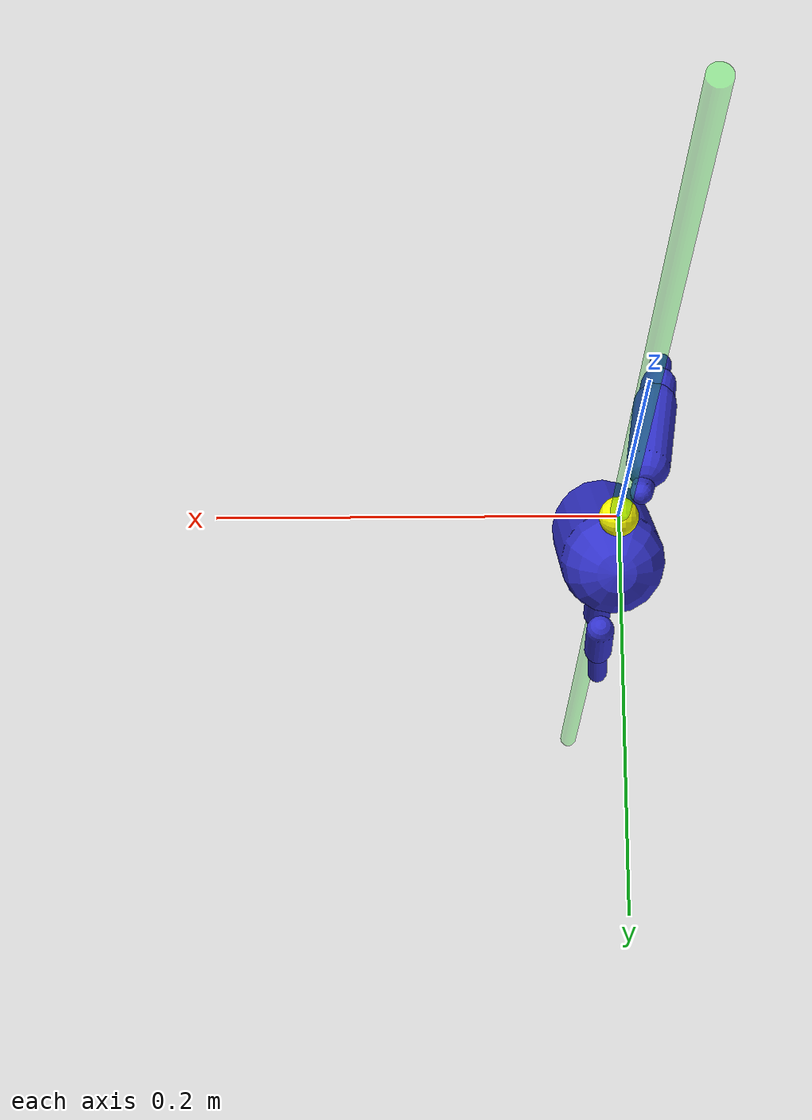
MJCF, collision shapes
<mujoco model="inspire left hand">
  <statistic center="0.3 0 0.4" extent="1"/>
  <compiler angle="radian" meshdir="./" autolimits="true"/>
  <visual>
    <headlight diffuse="0.6 0.6 0.6" ambient="0.3 0.3 0.3" specular="0 0 0"/>
    <rgba haze="0.15 0.25 0.35 1"/>
    <global azimuth="120" elevation="20"/>
  </visual>
  <default>
    <joint damping="1"/>
    <muscle ctrllimited="true" ctrlrange="0 100"/>
    <motor ctrllimited="true" ctrlrange="-3 3" gear="1"/>
    <position ctrllimited="true" kp="10"/>
  </default>
  <asset>
    <mesh name="l_palm_vis" file="meshes/inspire_hands/lh_base_link.STL"/>
    <mesh name="l_palm_col" file="meshes/inspire_hands/lh_base_link.STL"/>
    <mesh name="l_thumb_proximal_1_vis" file="meshes/inspire_hands/lh_Link11.STL"/>
    <mesh name="l_thumb_proximal_1_col" file="meshes/inspire_hands/lh_Link11.STL"/>
    <mesh name="l_thumb_proximal_2_vis" file="meshes/inspire_hands/lh_Link12.STL"/>
    <mesh name="l_thumb_proximal_2_col" file="meshes/inspire_hands/lh_Link12.STL"/>
    <mesh name="l_thumb_middle_vis" file="meshes/inspire_hands/lh_Link13.STL"/>
    <mesh name="l_thumb_middle_col" file="meshes/inspire_hands/lh_Link13.STL"/>
    <mesh name="l_thumb_distal_vis" file="meshes/inspire_hands/lh_Link14.STL"/>
    <mesh name="l_thumb_distal_col" file="meshes/inspire_hands/lh_Link14.STL"/>
    <mesh name="l_index_proximal_vis" file="meshes/inspire_hands/lh_Link15.STL"/>
    <mesh name="l_index_proximal_col" file="meshes/inspire_hands/lh_Link15.STL"/>
    <mesh name="l_index_distal_vis" file="meshes/inspire_hands/lh_Link16.STL"/>
    <mesh name="l_index_distal_col" file="meshes/inspire_hands/lh_Link16.STL"/>
    <mesh name="l_middle_proximal_vis" file="meshes/inspire_hands/lh_Link17.STL"/>
    <mesh name="l_middle_proximal_col" file="meshes/inspire_hands/lh_Link17.STL"/>
    <mesh name="l_middle_distal_vis" file="meshes/inspire_hands/lh_Link18.STL"/>
    <mesh name="l_middle_distal_col" file="meshes/inspire_hands/lh_Link18.STL"/>
    <mesh name="l_ring_proximal_vis" file="meshes/inspire_hands/lh_Link19.STL"/>
    <mesh name="l_ring_proximal_col" file="meshes/inspire_hands/lh_Link19.STL"/>
    <mesh name="l_ring_distal_vis" file="meshes/inspire_hands/lh_Link20.STL"/>
    <mesh name="l_ring_distal_col" file="meshes/inspire_hands/lh_Link20.STL"/>
    <mesh name="l_pinky_proximal_vis" file="meshes/inspire_hands/lh_Link21.STL"/>
    <mesh name="l_pinky_proximal_col" file="meshes/inspire_hands/lh_Link21.STL"/>
    <mesh name="l_pinky_distal_vis" file="meshes/inspire_hands/lh_Link22.STL"/>
    <mesh name="l_pinky_distal_col" file="meshes/inspire_hands/lh_Link22.STL"/>
    <material name="site_left_hand" rgba="0.1882 0.1882 0.1882 0"/>
    <material name="l_base_material" rgba="0 0 0 1"/>
    <material name="l_thumb_material" rgba="0 0 0 1"/>
    <material name="l_index_material" rgba="0 0 0 1"/>
    <material name="l_middle_material" rgba="0 0 0 1"/>
    <material name="l_ring_material" rgba="0 0 0 1"/>
    <material name="l_pinky_material" rgba="0 0 0 1"/>
    <material name="l_thumb_distal_material" rgba="0 0 0 1"/>
  </asset>
  <worldbody>
    <body name="left_hand" pos="0 0 0" quat="0.7071068 0.7071068 0 0">
      <site name="ft_frame" pos="0 0 0" size="0.01 0.01 0.01" rgba="1 0 0 0" type="sphere" group="1"/>
      <inertial diaginertia="0 0 0" mass="0" pos="0 0 0"/>
      <body name="eef" pos="0 0 0" quat="0.707 0. -0.707 0.">
        <site name="grip_site" pos="0 0 0" size="0.01 0.01 0.01" rgba="1 1 0 1" type="sphere" group="2"/>
        <site name="ee_x" pos="0.1 0 0" size="0.005 .1" quat="0.707105  0 0.707108 0 " rgba="1 0 0 0" type="cylinder" group="1"/>
        <site name="ee_y" pos="0 0.1 0" size="0.005 .1" quat="0.707105 0.707108 0 0" rgba="0 1 0 0" type="cylinder" group="1"/>
        <site name="ee_z" pos="0 0 0.1" size="0.005 .1" quat="1 0 0 0" rgba="0 0 1 0" type="cylinder" group="1"/>
        <site name="grip_site_cylinder" pos="0 0 0" quat="-0.5 -0.5 -0.5 0.5" size="0.005 0.5" rgba="0 1 0 0.3" type="cylinder" group="1"/>
      </body>
      <body name="l_palm" pos="0 0 0">
        <geom name="l_palm_vis" type="mesh" mesh="l_palm_vis" material="l_base_material" group="1" contype="0" conaffinity="0"/>
        <geom name="l_palm_col" type="capsule" mass="0.1" pos="0.002129 -0.056350 0.001956" quat="0.492997 -0.869809 -0.019654 0.000000" size="0.026363 0.033810" rgba="0.2 0.2 0.8 0.5"/>
        <body name="l_thumb" pos="0. 0. 0.">
          <body name="l_thumb_proximal_1" pos="-0.01496 -0.0375 0.02045" quat="0.5 0.5 -0.5 0.5">
            <joint name="joint_l_thumb_proximal_1" type="hinge" pos="0 0 0" axis="0 0 1" range="0 1.30" limited="true" damping="1"/>
            <geom name="l_thumb_proximal_vis" type="mesh" mesh="l_thumb_proximal_1_vis" material="l_thumb_material" group="1" contype="0" conaffinity="0"> </geom>
            <geom name="l_thumb_proximal_col" type="capsule" mass="0.1" pos="0.003902 -0.000165 -0.007259" quat="0.937168 -0.093734 0.336052 0.000000" size="0.005863 0.006462" rgba="0.2 0.2 0.8 0.5"/>
            <body name="l_thumb_proximal_2" pos="0.0099867 0.0098242 -0.0089" quat="0.705 -0.705 -0.060 0.060">
              <joint name="joint_l_thumb_proximal_2" type="hinge" pos="0 0 0" axis="0 0 -1" range="0 0.68" limited="true" damping="1"/>
              <geom name="l_thumb_proximal_2_vis" type="mesh" mesh="l_thumb_proximal_2_vis" material="l_thumb_material" group="1" contype="0" conaffinity="0"> </geom>
              <geom name="l_thumb_proximal_2_col" type="capsule" mass="0.1" pos="0.025967 -0.015151 -0.008033" quat="0.701536 0.319664 0.636916 0.000000" size="0.011402 0.022843" rgba="0.2 0.2 0.8 0.5"/>
              <site name="site_l_thumb_proximal_2" size="0.01" material="site_left_hand"/>
              <body name="l_thumb_middle" pos="0.04407 -0.034553 -0.0008" quat="1 0 0 0">
                <joint name="joint_l_thumb_middle" type="hinge" pos="0 0 0" axis="0 0 -1" range="0 0.68" limited="true" damping="1"/>
                <geom name="l_thumb_middle_vis" type="mesh" mesh="l_thumb_middle_vis" material="l_thumb_material" group="1" contype="0" conaffinity="0"/>
                <geom name="l_thumb_middle_col" type="capsule" mass="0.1" pos="0.006576 0.002428 -0.007230" quat="0.714278 0.229309 0.661229 0.000000" size="0.009429 0.011349" rgba="0.2 0.2 0.8 0.5"/>
                <site name="site_l_thumb_middle" size="0.01" material="site_left_hand"/>
                <body name="l_thumb_distal" pos="0.020248 -0.010156 -0.0012" quat="1 0 0 0">
                  <joint name="joint_l_thumb_distal" type="hinge" pos="0 0 0" axis="0 0 -1" range="0 0.77" limited="true" damping="1"/>
                  <geom name="l_thumb_distal_vis" type="mesh" mesh="l_thumb_distal_vis" material="l_thumb_distal_material" group="1" contype="0" conaffinity="0"> </geom>
                  <geom name="l_thumb_distal_col" type="capsule" mass="0.1" pos="0.008685 -0.004376 -0.006001" quat="0.707197 0.454913 0.541227 0.000000" size="0.006025 0.009084" rgba="0.2 0.2 0.8 0.5"/>
                  <site name="site_l_thumb_distal" size="0.01" material="site_left_hand"/>
                </body>
              </body>
            </body>
          </body>
        </body>
        <body name="l_index" pos="0 0 0">
          <body name="l_index_proximal" pos="0.0022853 -0.10493 0.032268" quat="0.99985 -0.01745 0.0 0.0">
            <joint name="joint_l_index_proximal" type="hinge" pos="0 0 0" axis="0 0 -1" range="0 1.62" limited="true" damping="1"/>
            <site name="site_l_index_proximal" size="0.01" material="site_left_hand"/>
            <geom name="l_index_proximal_vis" type="mesh" mesh="l_index_proximal_vis" material="l_index_material" group="1" contype="0" conaffinity="0"/>
            <geom name="l_index_proximal_col" type="capsule" mass="0.1" pos="0.001138 -0.013065 -0.006001" quat="0.706914 0.707211 -0.011196 0.000000" size="0.007375 0.015232" rgba="0.2 0.2 0.8 0.5"/>
            <body name="l_index_distal" pos="-0.0024229 -0.032041 -0.001" quat="1 0 0 0">
              <joint name="joint_l_index_distal" type="hinge" pos="0 0 0" axis="0 0 -1" range="0 1.82" limited="true" damping="1"/>
              <site name="site_l_index_distal" size="0.01" material="site_left_hand"/>
              <geom name="l_index_distal_vis" type="mesh" mesh="l_index_distal_vis" material="l_index_material" group="1" contype="0" conaffinity="0"/>
              <geom name="l_index_distal_col" type="capsule" mass="0.1" pos="0.002068 -0.018677 -0.005004" quat="0.707554 -0.703302 0.068804 0.000000" size="0.005202 0.021520" rgba="0.2 0.2 0.8 0.5"/>
            </body>
          </body>
        </body>
        <body name="l_middle" pos="0 0 0">
          <body name="l_middle_proximal" pos="0.0022853 -0.1055 0.01295" quat="1 0 0 0">
            <joint name="joint_l_middle_proximal" type="hinge" pos="0 0 0" axis="0 0 -1" range="0 1.62" limited="true" damping="1"/>
            <site name="site_l_middle_proximal" size="0.01" material="site_left_hand"/>
            <geom name="l_middle_proximal_vis" type="mesh" mesh="l_middle_proximal_vis" material="l_middle_material" group="1" contype="0" conaffinity="0"/>
            <geom name="l_middle_proximal_col" type="capsule" mass="0.1" pos="0.001138 -0.013065 -0.006001" quat="0.706914 0.707211 -0.011196 0.000000" size="0.007375 0.015232" rgba="0.2 0.2 0.8 0.5"/>
            <body name="l_middle_distal" pos="-0.0024229 -0.032041 -0.001" quat="1 0 0 0">
              <joint name="joint_l_middle_distal" type="hinge" pos="0 0 0" axis="0 0 -1" range="0 1.82" limited="true" damping="1"/>
              <site name="site_l_middle_distal" size="0.01" material="site_left_hand"/>
              <geom name="l_middle_distal_vis" type="mesh" mesh="l_middle_distal_vis" material="l_middle_material" group="1" contype="0" conaffinity="0"/>
              <geom name="l_middle_distal_col" type="capsule" mass="0.1" pos="0.001695 -0.020423 -0.005000" quat="0.707199 -0.704448 0.060186 0.000000" size="0.005301 0.023091" rgba="0.2 0.2 0.8 0.5"/>
            </body>
          </body>
        </body>
        <body name="l_ring" pos="0 0 0">
          <body name="l_ring_proximal" pos="0.0022853 -0.10531 -0.0062872" quat="0.99966 0.02618 0.0 0.0">
            <joint name="joint_l_ring_proximal" type="hinge" pos="0 0 0" axis="0 0 -1" range="0 1.62" limited="true" damping="1"/>
            <site name="site_l_ring_proximal" size="0.01" material="site_left_hand"/>
            <geom name="l_ring_proximal_vis" type="mesh" mesh="l_ring_proximal_vis" material="l_ring_material" group="1" contype="0" conaffinity="0"/>
            <geom name="l_ring_proximal_col" type="capsule" mass="0.1" pos="0.001138 -0.013065 -0.006001" quat="0.706914 0.707211 -0.011196 0.000000" size="0.007375 0.015232" rgba="0.2 0.2 0.8 0.5"/>
            <body name="l_ring_distal" pos="-0.0024229 -0.032041 -0.001" quat="1 0 0 0">
              <joint name="joint_l_ring_distal" type="hinge" pos="0 0 0" axis="0 0 -1" range="0 1.75" limited="true" damping="1"/>
              <site name="site_l_ring_distal" size="0.01" material="site_left_hand"/>
              <geom name="l_ring_distal_vis" type="mesh" mesh="l_ring_distal_vis" material="l_ring_material" group="1" contype="0" conaffinity="0"/>
              <geom name="l_ring_distal_col" type="capsule" mass="0.1" pos="0.002063 -0.018677 -0.005004" quat="0.707587 -0.703157 0.069937 0.000000" size="0.005214 0.021509" rgba="0.2 0.2 0.8 0.5"/>
            </body>
          </body>
        </body>
        <body name="l_pinky" pos="0 0 0">
          <body name="l_pinky_proximal" pos="0.0022853 -0.10411 -0.025488" quat="0.99863 0.05234 0.0 0.0">
            <joint name="joint_l_pinky_proximal" type="hinge" pos="0 0 0" axis="0 0 -1" range="0 1.62" limited="true" damping="1"/>
            <site name="site_l_pinky_proximal" size="0.01" material="site_left_hand"/>
            <geom name="l_pinky_proximal_vis" type="mesh" mesh="l_pinky_proximal_vis" material="l_pinky_material" group="1" contype="0" conaffinity="0"/>
            <geom name="l_pinky_proximal_col" type="capsule" mass="0.1" pos="0.001138 -0.013065 -0.006001" quat="0.706914 0.707211 -0.011196 0.000000" size="0.007375 0.015232" rgba="0.2 0.2 0.8 0.5"/>
            <body name="l_pinky_distal" pos="-0.0024229 -0.032041 -0.001" quat="1 0 0 0">
              <joint name="joint_l_pinky_distal" type="hinge" pos="0 0 0" axis="0 0 -1" range="0 1.87" limited="true" damping="1"/>
              <site name="site_l_pinky_distal" size="0.01" material="site_left_hand"/>
              <geom name="l_pinky_distal_vis" type="mesh" mesh="l_pinky_distal_vis" material="l_pinky_material" group="1" contype="0" conaffinity="0"/>
              <geom name="l_pinky_distal_col" type="capsule" mass="0.1" pos="0.002676 -0.014885 -0.005003" quat="0.706637 0.706388 -0.040981 0.000000" size="0.005199 0.017527" rgba="0.2 0.2 0.8 0.5"/>
            </body>
          </body>
        </body>
      </body>
    </body>
  </worldbody>
  <contact>
    <exclude name="exclude_lh_palm_thumb_proximal_1" body1="l_thumb_proximal_1" body2="l_palm"/>
    <exclude name="exclude_lh_palm_thumb_proximal_1_proximal_2" body1="l_thumb_proximal_1" body2="l_thumb_proximal_2"/>
    <exclude name="exclude_lh_palm_thumb_proximal_2" body1="l_thumb_proximal_2" body2="l_palm"/>
    <exclude name="exclude_lh_palm_thumb_middle_2" body1="l_thumb_middle" body2="l_palm"/>
    <exclude name="exclude_lh_thumb_proximal_2_middle" body1="l_thumb_proximal_2" body2="l_thumb_middle"/>
    <exclude name="exclude_lh_thumb_middle_distal" body1="l_thumb_middle" body2="l_thumb_distal"/>
    <exclude name="exclude_lh_palm_index_proximal" body1="l_index_proximal" body2="l_palm"/>
    <exclude name="exclude_lh_palm_middle_proximal" body1="l_middle_proximal" body2="l_palm"/>
    <exclude name="exclude_lh_palm_ring_proximal" body1="l_ring_proximal" body2="l_palm"/>
    <exclude name="exclude_lh_palm_pinky_proximal" body1="l_pinky_proximal" body2="l_palm"/>
  </contact>
  <actuator>
    <position joint="joint_l_pinky_distal" name="pinky_distal_drive" ctrlrange="0 1.87" kp="2" forcelimited="true" forcerange="-20 20"/>
    <position joint="joint_l_pinky_proximal" name="pinky_proximal_drive" ctrlrange="0 1.62" kp="2" forcelimited="true" forcerange="-20 20"/>
    <position joint="joint_l_ring_distal" name="ring_distal_drive" ctrlrange="0 1.75" kp="2" forcelimited="true" forcerange="-20 20"/>
    <position joint="joint_l_ring_proximal" name="ring_proximal_drive" ctrlrange="0 1.62" kp="2" forcelimited="true" forcerange="-20 20"/>
    <position joint="joint_l_middle_distal" name="middle_distal_drive" ctrlrange="0 1.82" kp="2" forcelimited="true" forcerange="-20 20"/>
    <position joint="joint_l_middle_proximal" name="middle_proximal_drive" ctrlrange="0 1.62" kp="2" forcelimited="true" forcerange="-20 20"/>
    <position joint="joint_l_index_distal" name="index_distal_drive" ctrlrange="0 1.82" kp="2" forcelimited="true" forcerange="-20 20"/>
    <position joint="joint_l_index_proximal" name="index_proximal_drive" ctrlrange="0 1.62" kp="2" forcelimited="true" forcerange="-20 20"/>
    <position joint="joint_l_thumb_distal" name="thumb_distal_drive" ctrlrange="0 0.77" kp="2" forcelimited="true" forcerange="-20 20"/>
    <position joint="joint_l_thumb_middle" name="thumb_middle_drive" ctrlrange="0 0.68" kp="2" forcelimited="true" forcerange="-20 20"/>
    <position joint="joint_l_thumb_proximal_2" name="thumb_proximal_2_drive" ctrlrange="0 0.68" kp="2" forcelimited="true" forcerange="-20 20"/>
    <position joint="joint_l_thumb_proximal_1" name="thumb_proximal_1_drive" ctrlrange="0 1.3" kp="4" forcelimited="true" forcerange="-20 20"/>
  </actuator>
  <sensor>
    <force name="force_ee" site="ft_frame"/>
    <torque name="torque_ee" site="ft_frame"/>
  </sensor>
</mujoco>
